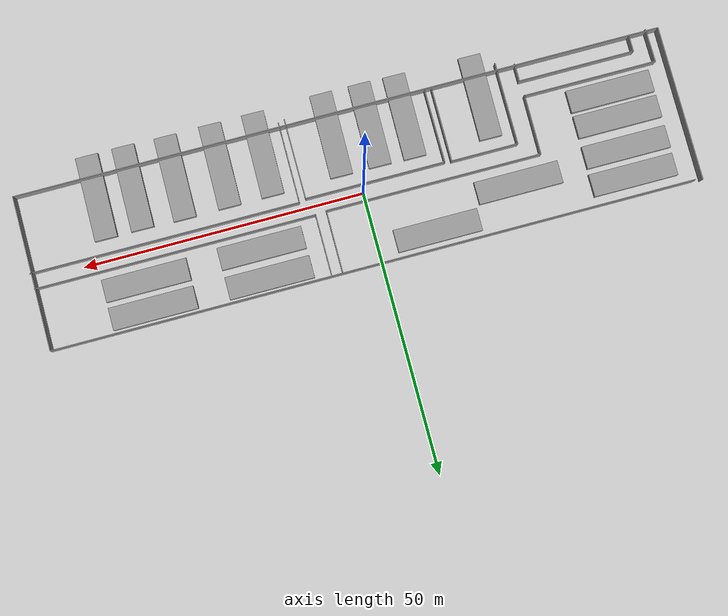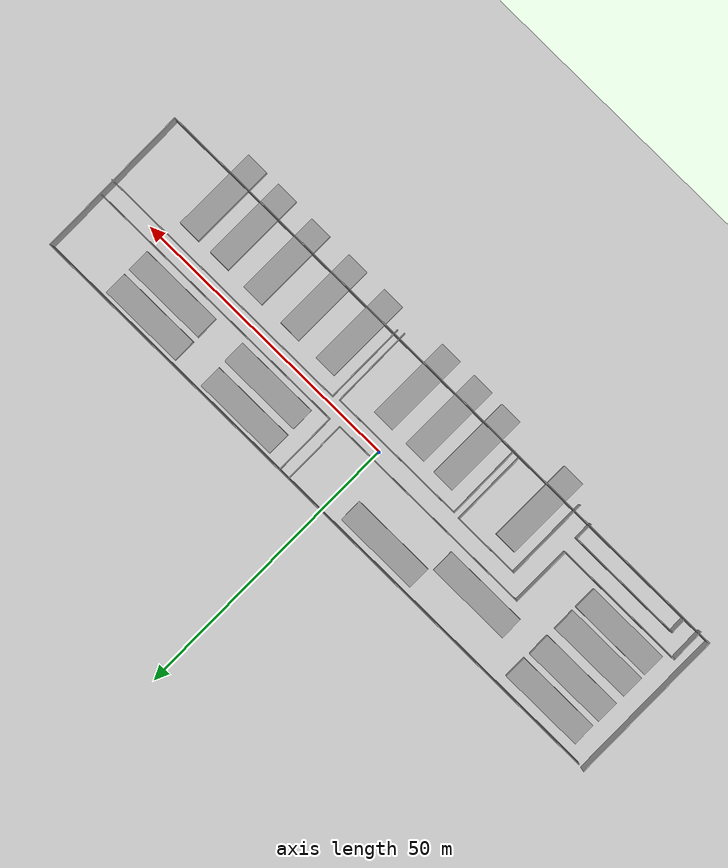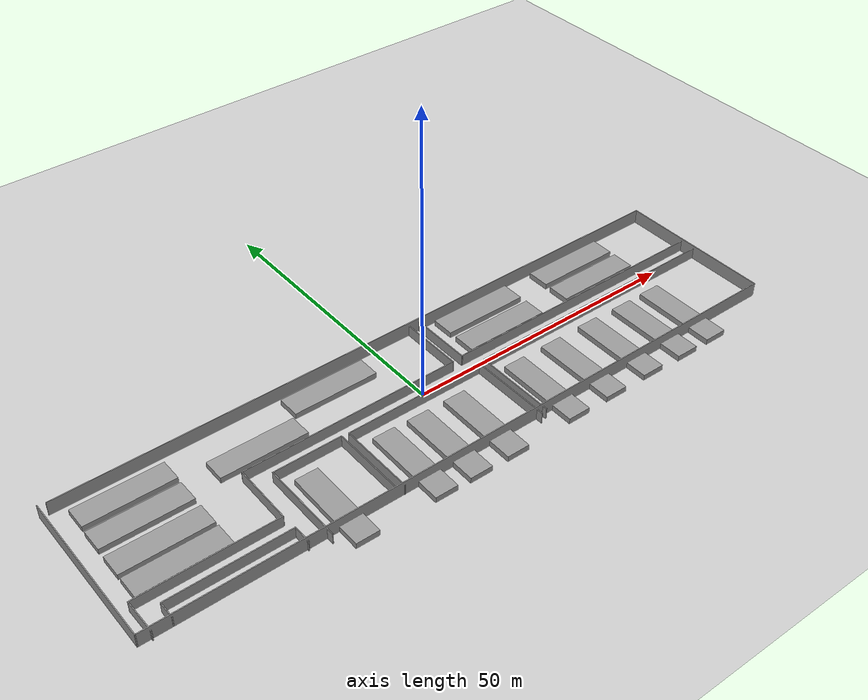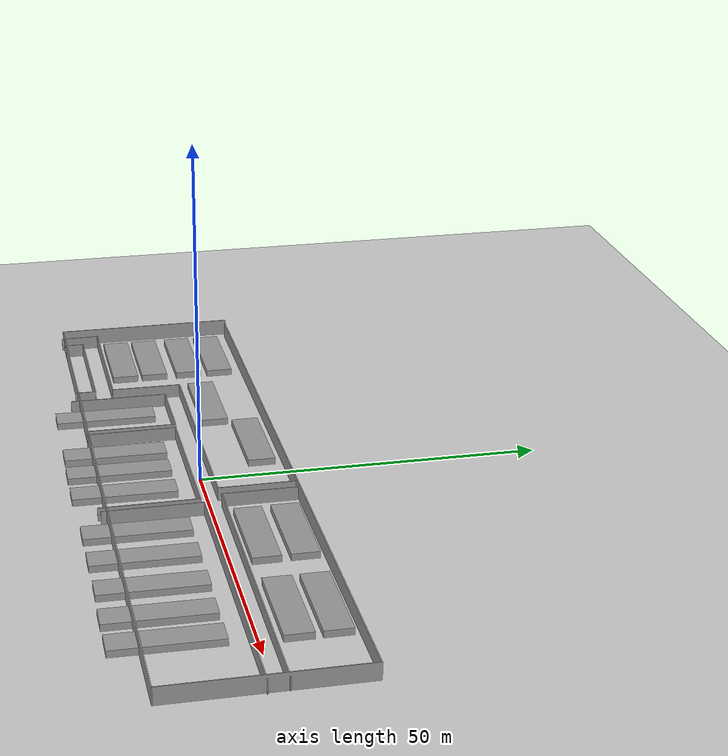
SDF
<sdf version="1.6">
 <world name="default">
  <light name="sun" type="directional">
   <pose>0 0 10 0 -0 0</pose>
   <diffuse>0.8 0.8 0.8 1</diffuse>
   <specular>0.2 0.2 0.2 1</specular>
   <attenuation>
    <range>1000</range>
    <constant>0.9</constant>
    <linear>0.01</linear>
    <quadratic>0.001</quadratic>
   </attenuation>
   <direction>-0.5 0.1 -0.9</direction>
  </light>
  <model name="ground_plane">
   <static>1</static>
   <link name="link">
    <collision name="collision">
     <geometry><plane><normal>0 0 1</normal><size>100 100</size></plane></geometry>
     <surface>
      <contact><collide_bitmask>65535</collide_bitmask></contact>
      <friction><ode><mu>100</mu><mu2>50</mu2></ode></friction>
     </surface>
    </collision>
    <visual name="visual">
     <cast_shadows>0</cast_shadows>
     <geometry><plane><normal>0 0 1</normal><size>100 100</size></plane></geometry>
     <material>
      <script><uri>file://media/materials/scripts/gazebo.material</uri><name>Gazebo/Grey</name></script>
     </material>
    </visual>
   </link>
  </model>
  <gravity>0 0 -9.8</gravity>
  <magnetic_field>6e-06 2.3e-05 -4.2e-05</magnetic_field>
  <atmosphere type="adiabatic"/>
  <physics name="default_physics" default="0" type="ode">
   <max_step_size>0.001</max_step_size>
   <real_time_factor>1</real_time_factor>
   <real_time_update_rate>1000</real_time_update_rate>
  </physics>
  <scene><ambient>0.4 0.4 0.4 1</ambient><background>0.7 0.7 0.7 1</background><shadows>1</shadows></scene>
  <audio><device>default</device></audio>
  <spherical_coordinates>
   <surface_model>EARTH_WGS84</surface_model>
   <latitude_deg>0</latitude_deg>
   <longitude_deg>0</longitude_deg>
   <elevation>0</elevation>
   <heading_deg>0</heading_deg>
  </spherical_coordinates>
  <model name="floorplan">
   <pose>0.935222 -1.4793 0 0 -0 0</pose>
   <link name="Wall_0">
    <collision name="Wall_0_Collision">
     <geometry><box><size>114.25 0.15 2.5</size></box></geometry>
     <pose>0 0 1.25 0 -0 0</pose>
    </collision>
    <visual name="Wall_0_Visual">
     <pose>0 0 1.25 0 -0 0</pose>
     <geometry><box><size>114.25 0.15 2.5</size></box></geometry>
     <material>
      <script><uri>file://media/materials/scripts/gazebo.material</uri><name>Gazebo/Grey</name></script>
      <ambient>1 1 1 1</ambient>
     </material>
     <meta><layer>0</layer></meta>
    </visual>
    <pose>0.461218 14.1797 0 0 -0 0</pose>
   </link>
   <link name="Wall_1">
    <collision name="Wall_1_Collision">
     <geometry><box><size>27.5 0.15 2.5</size></box></geometry>
     <pose>0 0 1.25 0 -0 0</pose>
    </collision>
    <visual name="Wall_1_Visual">
     <pose>0 0 1.25 0 -0 0</pose>
     <geometry><box><size>27.5 0.15 2.5</size></box></geometry>
     <material>
      <script><uri>file://media/materials/scripts/gazebo.material</uri><name>Gazebo/Grey</name></script>
      <ambient>1 1 1 1</ambient>
     </material>
     <meta><layer>0</layer></meta>
    </visual>
    <pose>57.5112 0.504686 0 0 -0 -1.5708</pose>
   </link>
   <link name="Wall_11">
    <collision name="Wall_11_Collision">
     <geometry><box><size>3 0.15 2</size></box></geometry>
     <pose>0 0 1 0 -0 0</pose>
    </collision>
    <visual name="Wall_11_Visual">
     <pose>0 0 1 0 -0 0</pose>
     <geometry><box><size>3 0.15 2</size></box></geometry>
     <material>
      <script><uri>file://media/materials/scripts/gazebo.material</uri><name>Gazebo/Grey</name></script>
      <ambient>1 1 1 1</ambient>
     </material>
     <meta><layer>0</layer></meta>
    </visual>
    <pose>-52.7012 -11.8017 0 0 -0 1.5708</pose>
   </link>
   <link name="Wall_12">
    <collision name="Wall_12_Collision">
     <geometry><box><size>20.75 0.15 2</size></box></geometry>
     <pose>0 0 1 0 -0 0</pose>
    </collision>
    <visual name="Wall_12_Visual">
     <pose>0 0 1 0 -0 0</pose>
     <geometry><box><size>20.75 0.15 2</size></box></geometry>
     <material>
      <script><uri>file://media/materials/scripts/gazebo.material</uri><name>Gazebo/Grey</name></script>
      <ambient>1 1 1 1</ambient>
     </material>
     <meta><layer>0</layer></meta>
    </visual>
    <pose>-42.4012 -10.3767 0 0 -0 0</pose>
   </link>
   <link name="Wall_13">
    <collision name="Wall_13_Collision">
     <geometry><box><size>3.25 0.15 2</size></box></geometry>
     <pose>0 0 1 0 -0 0</pose>
    </collision>
    <visual name="Wall_13_Visual">
     <pose>0 0 1 0 -0 0</pose>
     <geometry><box><size>3.25 0.15 2</size></box></geometry>
     <material>
      <script><uri>file://media/materials/scripts/gazebo.material</uri><name>Gazebo/Grey</name></script>
      <ambient>1 1 1 1</ambient>
     </material>
     <meta><layer>0</layer></meta>
    </visual>
    <pose>-32.1012 -11.9267 0 0 -0 -1.5708</pose>
   </link>
   <link name="Wall_15">
    <collision name="Wall_15_Collision">
     <geometry><box><size>14.75 0.15 2</size></box></geometry>
     <pose>0 0 1 0 -0 0</pose>
    </collision>
    <visual name="Wall_15_Visual">
     <pose>0 0 1 0 -0 0</pose>
     <geometry><box><size>14.75 0.15 2</size></box></geometry>
     <material>
      <script><uri>file://media/materials/scripts/gazebo.material</uri><name>Gazebo/Grey</name></script>
      <ambient>1 1 1 1</ambient>
     </material>
     <meta><layer>0</layer></meta>
    </visual>
    <pose>-28.8552 -7.12969 0 0 -0 1.5708</pose>
   </link>
   <link name="Wall_16">
    <collision name="Wall_16_Collision">
     <geometry><box><size>12 0.15 2</size></box></geometry>
     <pose>0 0 1 0 -0 0</pose>
    </collision>
    <visual name="Wall_16_Visual">
     <pose>0 0 1 0 -0 0</pose>
     <geometry><box><size>12 0.15 2</size></box></geometry>
     <material>
      <script><uri>file://media/materials/scripts/gazebo.material</uri><name>Gazebo/Grey</name></script>
      <ambient>1 1 1 1</ambient>
     </material>
     <meta><layer>0</layer></meta>
    </visual>
    <pose>-22.9302 0.170313 0 0 -0 0</pose>
   </link>
   <link name="Wall_17">
    <collision name="Wall_17_Collision">
     <geometry><box><size>13.25 0.15 2</size></box></geometry>
     <pose>0 0 1 0 -0 0</pose>
    </collision>
    <visual name="Wall_17_Visual">
     <pose>0 0 1 0 -0 0</pose>
     <geometry><box><size>13.25 0.15 2</size></box></geometry>
     <material>
      <script><uri>file://media/materials/scripts/gazebo.material</uri><name>Gazebo/Grey</name></script>
      <ambient>1 1 1 1</ambient>
     </material>
     <meta><layer>0</layer></meta>
    </visual>
    <pose>-17.0052 -6.37969 0 0 -0 -1.5708</pose>
   </link>
   <link name="Wall_19">
    <collision name="Wall_19_Collision">
     <geometry><box><size>13.4531 0.15 2</size></box></geometry>
     <pose>0 0 1 0 -0 0</pose>
    </collision>
    <visual name="Wall_19_Visual">
     <pose>0 0 1 0 -0 0</pose>
     <geometry><box><size>13.4531 0.15 2</size></box></geometry>
     <material>
      <script><uri>file://media/materials/scripts/gazebo.material</uri><name>Gazebo/Grey</name></script>
      <ambient>1 1 1 1</ambient>
     </material>
     <meta><layer>0</layer></meta>
    </visual>
    <pose>-15.7887 -6.64519 0 0 -0 1.57433</pose>
   </link>
   <link name="Wall_2">
    <collision name="Wall_2_Collision">
     <geometry><box><size>115.5 0.15 2.5</size></box></geometry>
     <pose>0 0 1.25 0 -0 0</pose>
    </collision>
    <visual name="Wall_2_Visual">
     <pose>0 0 1.25 0 -0 0</pose>
     <geometry><box><size>115.5 0.15 2.5</size></box></geometry>
     <material>
      <script><uri>file://media/materials/scripts/gazebo.material</uri><name>Gazebo/Grey</name></script>
      <ambient>1 1 1 1</ambient>
     </material>
     <meta><layer>0</layer></meta>
    </visual>
    <pose>-0.163782 -13.1703 0 0 -0 3.14159</pose>
   </link>
   <link name="Wall_20">
    <collision name="Wall_20_Collision">
     <geometry><box><size>24.9996 0.15 2</size></box></geometry>
     <pose>0 0 1 0 -0 0</pose>
    </collision>
    <visual name="Wall_20_Visual">
     <pose>0 0 1 0 -0 0</pose>
     <geometry><box><size>24.9996 0.15 2</size></box></geometry>
     <material>
      <script><uri>file://media/materials/scripts/gazebo.material</uri><name>Gazebo/Grey</name></script>
      <ambient>1 1 1 1</ambient>
     </material>
     <meta><layer>0</layer></meta>
    </visual>
    <pose>-3.38722 0.006313 0 0 -0 0</pose>
   </link>
   <link name="Wall_21">
    <collision name="Wall_21_Collision">
     <geometry><box><size>14.4535 0.15 2</size></box></geometry>
     <pose>0 0 1 0 -0 0</pose>
    </collision>
    <visual name="Wall_21_Visual">
     <pose>0 0 1 0 -0 0</pose>
     <geometry><box><size>14.4535 0.15 2</size></box></geometry>
     <material>
      <script><uri>file://media/materials/scripts/gazebo.material</uri><name>Gazebo/Grey</name></script>
      <ambient>1 1 1 1</ambient>
     </material>
     <meta><layer>0</layer></meta>
    </visual>
    <pose>9.06128 -7.14519 0 0 -0 -1.56751</pose>
   </link>
   <link name="Wall_23">
    <collision name="Wall_23_Collision">
     <geometry><box><size>14.5 0.15 2</size></box></geometry>
     <pose>0 0 1 0 -0 0</pose>
    </collision>
    <visual name="Wall_23_Visual">
     <pose>0 0 1 0 -0 0</pose>
     <geometry><box><size>14.5 0.15 2</size></box></geometry>
     <material>
      <script><uri>file://media/materials/scripts/gazebo.material</uri><name>Gazebo/Grey</name></script>
      <ambient>1 1 1 1</ambient>
     </material>
     <meta><layer>0</layer></meta>
    </visual>
    <pose>10.2388 -6.79169 0 0 -0 1.5708</pose>
   </link>
   <link name="Wall_24">
    <collision name="Wall_24_Collision">
     <geometry><box><size>47.75 0.15 2</size></box></geometry>
     <pose>0 0 1 0 -0 0</pose>
    </collision>
    <visual name="Wall_24_Visual">
     <pose>0 0 1 0 -0 0</pose>
     <geometry><box><size>47.75 0.15 2</size></box></geometry>
     <material>
      <script><uri>file://media/materials/scripts/gazebo.material</uri><name>Gazebo/Grey</name></script>
      <ambient>1 1 1 1</ambient>
     </material>
     <meta><layer>0</layer></meta>
    </visual>
    <pose>34.0388 0.383313 0 0 -0 0</pose>
   </link>
   <link name="Wall_26">
    <collision name="Wall_26_Collision">
     <geometry><box><size>11 0.15 2</size></box></geometry>
     <pose>0 0 1 0 -0 0</pose>
    </collision>
    <visual name="Wall_26_Visual">
     <pose>0 0 1 0 -0 0</pose>
     <geometry><box><size>11 0.15 2</size></box></geometry>
     <material>
      <script><uri>file://media/materials/scripts/gazebo.material</uri><name>Gazebo/Grey</name></script>
      <ambient>1 1 1 1</ambient>
     </material>
     <meta><layer>0</layer></meta>
    </visual>
    <pose>8.08678 8.58731 0 0 -0 -1.5708</pose>
   </link>
   <link name="Wall_27">
    <collision name="Wall_27_Collision">
     <geometry><box><size>49.75 0.15 2</size></box></geometry>
     <pose>0 0 1 0 -0 0</pose>
    </collision>
    <visual name="Wall_27_Visual">
     <pose>0 0 1 0 -0 0</pose>
     <geometry><box><size>49.75 0.15 2</size></box></geometry>
     <material>
      <script><uri>file://media/materials/scripts/gazebo.material</uri><name>Gazebo/Grey</name></script>
      <ambient>1 1 1 1</ambient>
     </material>
     <meta><layer>0</layer></meta>
    </visual>
    <pose>32.8868 3.16231 0 0 -0 0</pose>
   </link>
   <link name="Wall_3">
    <collision name="Wall_3_Collision">
     <geometry><box><size>27.75 0.15 2.5</size></box></geometry>
     <pose>0 0 1.25 0 -0 0</pose>
    </collision>
    <visual name="Wall_3_Visual">
     <pose>0 0 1.25 0 -0 0</pose>
     <geometry><box><size>27.75 0.15 2.5</size></box></geometry>
     <material>
      <script><uri>file://media/materials/scripts/gazebo.material</uri><name>Gazebo/Grey</name></script>
      <ambient>1 1 1 1</ambient>
     </material>
     <meta><layer>0</layer></meta>
    </visual>
    <pose>-57.8388 0.629686 0 0 -0 1.5708</pose>
   </link>
   <link name="Wall_5">
    <collision name="Wall_5_Collision">
     <geometry><box><size>6.0003 0.15 2</size></box></geometry>
     <pose>0 0 1 0 -0 0</pose>
    </collision>
    <visual name="Wall_5_Visual">
     <pose>0 0 1 0 -0 0</pose>
     <geometry><box><size>6.0003 0.15 2</size></box></geometry>
     <material>
      <script><uri>file://media/materials/scripts/gazebo.material</uri><name>Gazebo/Grey</name></script>
      <ambient>1 1 1 1</ambient>
     </material>
     <meta><layer>0</layer></meta>
    </visual>
    <pose>-55.8547 -10.5847 0 0 -0 1.58464</pose>
   </link>
   <link name="Wall_6">
    <collision name="Wall_6_Collision">
     <geometry><box><size>23.75 0.15 2</size></box></geometry>
     <pose>0 0 1 0 -0 0</pose>
    </collision>
    <visual name="Wall_6_Visual">
     <pose>0 0 1 0 -0 0</pose>
     <geometry><box><size>23.75 0.15 2</size></box></geometry>
     <material>
      <script><uri>file://media/materials/scripts/gazebo.material</uri><name>Gazebo/Grey</name></script>
      <ambient>1 1 1 1</ambient>
     </material>
     <meta><layer>0</layer></meta>
    </visual>
    <pose>-44.0952 -7.65969 0 0 -0 0</pose>
   </link>
   <link name="Wall_7">
    <collision name="Wall_7_Collision">
     <geometry><box><size>10.75 0.15 2</size></box></geometry>
     <pose>0 0 1 0 -0 0</pose>
    </collision>
    <visual name="Wall_7_Visual">
     <pose>0 0 1 0 -0 0</pose>
     <geometry><box><size>10.75 0.15 2</size></box></geometry>
     <material>
      <script><uri>file://media/materials/scripts/gazebo.material</uri><name>Gazebo/Grey</name></script>
      <ambient>1 1 1 1</ambient>
     </material>
     <meta><layer>0</layer></meta>
    </visual>
    <pose>-32.2547 -2.35969 0 0 -0 1.56316</pose>
   </link>
   <link name="Wall_8">
    <collision name="Wall_8_Collision">
     <geometry><box><size>38.5 0.15 2</size></box></geometry>
     <pose>0 0 1 0 -0 0</pose>
    </collision>
    <visual name="Wall_8_Visual">
     <pose>0 0 1 0 -0 0</pose>
     <geometry><box><size>38.5 0.15 2</size></box></geometry>
     <material>
      <script><uri>file://media/materials/scripts/gazebo.material</uri><name>Gazebo/Grey</name></script>
      <ambient>1 1 1 1</ambient>
     </material>
     <meta><layer>0</layer></meta>
    </visual>
    <pose>-13.0392 2.94031 0 0 -0 0</pose>
   </link>
   <link name="Wall_9">
    <collision name="Wall_9_Collision">
     <geometry><box><size>11.25 0.15 2</size></box></geometry>
     <pose>0 0 1 0 -0 0</pose>
    </collision>
    <visual name="Wall_9_Visual">
     <pose>0 0 1 0 -0 0</pose>
     <geometry><box><size>11.25 0.15 2</size></box></geometry>
     <material>
      <script><uri>file://media/materials/scripts/gazebo.material</uri><name>Gazebo/Grey</name></script>
      <ambient>1 1 1 1</ambient>
     </material>
     <meta><layer>0</layer></meta>
    </visual>
    <pose>6.13578 8.49031 0 0 -0 1.5708</pose>
   </link>
   <static>1</static>
  </model>
  <model name="factorybox">
   <link name="link_1">
    <inertial>
     <mass>1</mass>
     <inertia>
      <ixx>0.166667</ixx>
      <ixy>0</ixy>
      <ixz>0</ixz>
      <iyy>0.166667</iyy>
      <iyz>0</iyz>
      <izz>0.166667</izz>
     </inertia>
    </inertial>
    <pose>2e-06 0 0 0 -0 0</pose>
    <visual name="visual">
     <geometry><box><size>15 4 1</size></box></geometry>
     <material>
      <lighting>1</lighting>
      <script><uri>file://media/materials/scripts/gazebo.material</uri><name>Gazebo/Grey</name></script>
      <shader type="vertex"><normal_map>__default__</normal_map></shader>
      <ambient>0.3 0.3 0.3 1</ambient>
      <diffuse>0.7 0.7 0.7 1</diffuse>
      <specular>0.01 0.01 0.01 1</specular>
      <emissive>0 0 0 1</emissive>
     </material>
    </visual>
    <collision name="collision">
     <geometry><box><size>1 1 1</size></box></geometry>
     <surface>
      <friction>
       <ode><mu>1</mu><mu2>1</mu2><fdir1>0 0 0</fdir1><slip1>0</slip1><slip2>0</slip2></ode>
       <torsional>
        <coefficient>1</coefficient>
        <patch_radius>0</patch_radius>
        <surface_radius>0</surface_radius>
        <use_patch_radius>1</use_patch_radius>
        <ode><slip>0</slip></ode>
       </torsional>
      </friction>
      <bounce><restitution_coefficient>0</restitution_coefficient><threshold>1e+06</threshold></bounce>
      <contact>
       <collide_without_contact>0</collide_without_contact>
       <collide_without_contact_bitmask>1</collide_without_contact_bitmask>
       <collide_bitmask>1</collide_bitmask>
       <ode>
        <soft_cfm>0</soft_cfm>
        <soft_erp>0.2</soft_erp>
        <kp>1e+13</kp>
        <kd>1</kd>
        <max_vel>0.01</max_vel>
        <min_depth>0</min_depth>
       </ode>
       <bullet>
        <split_impulse>1</split_impulse>
        <split_impulse_penetration_threshold>-0.01</split_impulse_penetration_threshold>
        <soft_cfm>0</soft_cfm>
        <soft_erp>0.2</soft_erp>
        <kp>1e+13</kp>
        <kd>1</kd>
       </bullet>
      </contact>
     </surface>
    </collision>
   </link>
   <static>0</static>
   <pose>-45.9781 8.98485 0.5 0 -0 0</pose>
  </model>
  <model name="factorybox_clone">
   <link name="link_1">
    <inertial>
     <mass>1</mass>
     <inertia>
      <ixx>0.166667</ixx>
      <ixy>0</ixy>
      <ixz>0</ixz>
      <iyy>0.166667</iyy>
      <iyz>0</iyz>
      <izz>0.166667</izz>
     </inertia>
    </inertial>
    <pose>2e-06 0 0 0 -0 0</pose>
    <visual name="visual">
     <geometry><box><size>15 4 1</size></box></geometry>
     <material>
      <lighting>1</lighting>
      <script><uri>file://media/materials/scripts/gazebo.material</uri><name>Gazebo/Grey</name></script>
      <shader type="vertex"><normal_map>__default__</normal_map></shader>
      <ambient>0.3 0.3 0.3 1</ambient>
      <diffuse>0.7 0.7 0.7 1</diffuse>
      <specular>0.01 0.01 0.01 1</specular>
      <emissive>0 0 0 1</emissive>
     </material>
    </visual>
    <collision name="collision">
     <geometry><box><size>1 1 1</size></box></geometry>
     <surface>
      <friction>
       <ode><mu>1</mu><mu2>1</mu2><fdir1>0 0 0</fdir1><slip1>0</slip1><slip2>0</slip2></ode>
       <torsional>
        <coefficient>1</coefficient>
        <patch_radius>0</patch_radius>
        <surface_radius>0</surface_radius>
        <use_patch_radius>1</use_patch_radius>
        <ode><slip>0</slip></ode>
       </torsional>
      </friction>
      <bounce><restitution_coefficient>0</restitution_coefficient><threshold>1e+06</threshold></bounce>
      <contact>
       <collide_without_contact>0</collide_without_contact>
       <collide_without_contact_bitmask>1</collide_without_contact_bitmask>
       <collide_bitmask>1</collide_bitmask>
       <ode>
        <soft_cfm>0</soft_cfm>
        <soft_erp>0.2</soft_erp>
        <kp>1e+13</kp>
        <kd>1</kd>
        <max_vel>0.01</max_vel>
        <min_depth>0</min_depth>
       </ode>
       <bullet>
        <split_impulse>1</split_impulse>
        <split_impulse_penetration_threshold>-0.01</split_impulse_penetration_threshold>
        <soft_cfm>0</soft_cfm>
        <soft_erp>0.2</soft_erp>
        <kp>1e+13</kp>
        <kd>1</kd>
       </bullet>
      </contact>
     </surface>
    </collision>
   </link>
   <static>0</static>
   <pose>-46.1159 3.96263 0.499995 0 -1e-05 0</pose>
  </model>
  <model name="factorybox_clone_0">
   <link name="link_1">
    <inertial>
     <mass>1</mass>
     <inertia>
      <ixx>0.166667</ixx>
      <ixy>0</ixy>
      <ixz>0</ixz>
      <iyy>0.166667</iyy>
      <iyz>0</iyz>
      <izz>0.166667</izz>
     </inertia>
    </inertial>
    <pose>2e-06 0 0 0 -0 0</pose>
    <visual name="visual">
     <geometry><box><size>15 4 1</size></box></geometry>
     <material>
      <lighting>1</lighting>
      <script><uri>file://media/materials/scripts/gazebo.material</uri><name>Gazebo/Grey</name></script>
      <shader type="vertex"><normal_map>__default__</normal_map></shader>
      <ambient>0.3 0.3 0.3 1</ambient>
      <diffuse>0.7 0.7 0.7 1</diffuse>
      <specular>0.01 0.01 0.01 1</specular>
      <emissive>0 0 0 1</emissive>
     </material>
    </visual>
    <collision name="collision">
     <geometry><box><size>1 1 1</size></box></geometry>
     <surface>
      <friction>
       <ode><mu>1</mu><mu2>1</mu2><fdir1>0 0 0</fdir1><slip1>0</slip1><slip2>0</slip2></ode>
       <torsional>
        <coefficient>1</coefficient>
        <patch_radius>0</patch_radius>
        <surface_radius>0</surface_radius>
        <use_patch_radius>1</use_patch_radius>
        <ode><slip>0</slip></ode>
       </torsional>
      </friction>
      <bounce><restitution_coefficient>0</restitution_coefficient><threshold>1e+06</threshold></bounce>
      <contact>
       <collide_without_contact>0</collide_without_contact>
       <collide_without_contact_bitmask>1</collide_without_contact_bitmask>
       <collide_bitmask>1</collide_bitmask>
       <ode>
        <soft_cfm>0</soft_cfm>
        <soft_erp>0.2</soft_erp>
        <kp>1e+13</kp>
        <kd>1</kd>
        <max_vel>0.01</max_vel>
        <min_depth>0</min_depth>
       </ode>
       <bullet>
        <split_impulse>1</split_impulse>
        <split_impulse_penetration_threshold>-0.01</split_impulse_penetration_threshold>
        <soft_cfm>0</soft_cfm>
        <soft_erp>0.2</soft_erp>
        <kp>1e+13</kp>
        <kd>1</kd>
       </bullet>
      </contact>
     </surface>
    </collision>
   </link>
   <static>0</static>
   <pose>-46.1738 -1.5629 0.499995 0 -1e-05 0</pose>
  </model>
  <model name="factorybox_clone_1">
   <link name="link_1">
    <inertial>
     <mass>1</mass>
     <inertia>
      <ixx>0.166667</ixx>
      <ixy>0</ixy>
      <ixz>0</ixz>
      <iyy>0.166667</iyy>
      <iyz>0</iyz>
      <izz>0.166667</izz>
     </inertia>
    </inertial>
    <pose>2e-06 0 0 0 -0 0</pose>
    <visual name="visual">
     <geometry><box><size>15 4 1</size></box></geometry>
     <material>
      <lighting>1</lighting>
      <script><uri>file://media/materials/scripts/gazebo.material</uri><name>Gazebo/Grey</name></script>
      <shader type="vertex"><normal_map>__default__</normal_map></shader>
      <ambient>0.3 0.3 0.3 1</ambient>
      <diffuse>0.7 0.7 0.7 1</diffuse>
      <specular>0.01 0.01 0.01 1</specular>
      <emissive>0 0 0 1</emissive>
     </material>
    </visual>
    <collision name="collision">
     <geometry><box><size>1 1 1</size></box></geometry>
     <surface>
      <friction>
       <ode><mu>1</mu><mu2>1</mu2><fdir1>0 0 0</fdir1><slip1>0</slip1><slip2>0</slip2></ode>
       <torsional>
        <coefficient>1</coefficient>
        <patch_radius>0</patch_radius>
        <surface_radius>0</surface_radius>
        <use_patch_radius>1</use_patch_radius>
        <ode><slip>0</slip></ode>
       </torsional>
      </friction>
      <bounce><restitution_coefficient>0</restitution_coefficient><threshold>1e+06</threshold></bounce>
      <contact>
       <collide_without_contact>0</collide_without_contact>
       <collide_without_contact_bitmask>1</collide_without_contact_bitmask>
       <collide_bitmask>1</collide_bitmask>
       <ode>
        <soft_cfm>0</soft_cfm>
        <soft_erp>0.2</soft_erp>
        <kp>1e+13</kp>
        <kd>1</kd>
        <max_vel>0.01</max_vel>
        <min_depth>0</min_depth>
       </ode>
       <bullet>
        <split_impulse>1</split_impulse>
        <split_impulse_penetration_threshold>-0.01</split_impulse_penetration_threshold>
        <soft_cfm>0</soft_cfm>
        <soft_erp>0.2</soft_erp>
        <kp>1e+13</kp>
        <kd>1</kd>
       </bullet>
      </contact>
     </surface>
    </collision>
   </link>
   <static>0</static>
   <pose>-46.1591 -6.23166 0.499995 0 1e-05 0</pose>
  </model>
  <model name="factorybox_clone_2">
   <link name="link_1">
    <inertial>
     <mass>1</mass>
     <inertia>
      <ixx>0.166667</ixx>
      <ixy>0</ixy>
      <ixz>0</ixz>
      <iyy>0.166667</iyy>
      <iyz>0</iyz>
      <izz>0.166667</izz>
     </inertia>
    </inertial>
    <pose>2e-06 0 0 0 -0 0</pose>
    <visual name="visual">
     <geometry><box><size>15 4 1</size></box></geometry>
     <material>
      <lighting>1</lighting>
      <script><uri>file://media/materials/scripts/gazebo.material</uri><name>Gazebo/Grey</name></script>
      <shader type="vertex"><normal_map>__default__</normal_map></shader>
      <ambient>0.3 0.3 0.3 1</ambient>
      <diffuse>0.7 0.7 0.7 1</diffuse>
      <specular>0.01 0.01 0.01 1</specular>
      <emissive>0 0 0 1</emissive>
     </material>
    </visual>
    <collision name="collision">
     <geometry><box><size>1 1 1</size></box></geometry>
     <surface>
      <friction>
       <ode><mu>1</mu><mu2>1</mu2><fdir1>0 0 0</fdir1><slip1>0</slip1><slip2>0</slip2></ode>
       <torsional>
        <coefficient>1</coefficient>
        <patch_radius>0</patch_radius>
        <surface_radius>0</surface_radius>
        <use_patch_radius>1</use_patch_radius>
        <ode><slip>0</slip></ode>
       </torsional>
      </friction>
      <bounce><restitution_coefficient>0</restitution_coefficient><threshold>1e+06</threshold></bounce>
      <contact>
       <collide_without_contact>0</collide_without_contact>
       <collide_without_contact_bitmask>1</collide_without_contact_bitmask>
       <collide_bitmask>1</collide_bitmask>
       <ode>
        <soft_cfm>0</soft_cfm>
        <soft_erp>0.2</soft_erp>
        <kp>1e+13</kp>
        <kd>1</kd>
        <max_vel>0.01</max_vel>
        <min_depth>0</min_depth>
       </ode>
       <bullet>
        <split_impulse>1</split_impulse>
        <split_impulse_penetration_threshold>-0.01</split_impulse_penetration_threshold>
        <soft_cfm>0</soft_cfm>
        <soft_erp>0.2</soft_erp>
        <kp>1e+13</kp>
        <kd>1</kd>
       </bullet>
      </contact>
     </surface>
    </collision>
   </link>
   <static>0</static>
   <pose>-10.6921 9.59296 0.499995 -1e-05 -0 -0</pose>
  </model>
  <model name="factorybox_clone_3">
   <link name="link_1">
    <inertial>
     <mass>1</mass>
     <inertia>
      <ixx>0.166667</ixx>
      <ixy>0</ixy>
      <ixz>0</ixz>
      <iyy>0.166667</iyy>
      <iyz>0</iyz>
      <izz>0.166667</izz>
     </inertia>
    </inertial>
    <pose>2e-06 0 0 0 -0 0</pose>
    <visual name="visual">
     <geometry><box><size>15 4 1</size></box></geometry>
     <material>
      <lighting>1</lighting>
      <script><uri>file://media/materials/scripts/gazebo.material</uri><name>Gazebo/Grey</name></script>
      <shader type="vertex"><normal_map>__default__</normal_map></shader>
      <ambient>0.3 0.3 0.3 1</ambient>
      <diffuse>0.7 0.7 0.7 1</diffuse>
      <specular>0.01 0.01 0.01 1</specular>
      <emissive>0 0 0 1</emissive>
     </material>
    </visual>
    <collision name="collision">
     <geometry><box><size>1 1 1</size></box></geometry>
     <surface>
      <friction>
       <ode><mu>1</mu><mu2>1</mu2><fdir1>0 0 0</fdir1><slip1>0</slip1><slip2>0</slip2></ode>
       <torsional>
        <coefficient>1</coefficient>
        <patch_radius>0</patch_radius>
        <surface_radius>0</surface_radius>
        <use_patch_radius>1</use_patch_radius>
        <ode><slip>0</slip></ode>
       </torsional>
      </friction>
      <bounce><restitution_coefficient>0</restitution_coefficient><threshold>1e+06</threshold></bounce>
      <contact>
       <collide_without_contact>0</collide_without_contact>
       <collide_without_contact_bitmask>1</collide_without_contact_bitmask>
       <collide_bitmask>1</collide_bitmask>
       <ode>
        <soft_cfm>0</soft_cfm>
        <soft_erp>0.2</soft_erp>
        <kp>1e+13</kp>
        <kd>1</kd>
        <max_vel>0.01</max_vel>
        <min_depth>0</min_depth>
       </ode>
       <bullet>
        <split_impulse>1</split_impulse>
        <split_impulse_penetration_threshold>-0.01</split_impulse_penetration_threshold>
        <soft_cfm>0</soft_cfm>
        <soft_erp>0.2</soft_erp>
        <kp>1e+13</kp>
        <kd>1</kd>
       </bullet>
      </contact>
     </surface>
    </collision>
   </link>
   <static>0</static>
   <pose>-26.389 5.14583 0.499995 0 1e-05 0</pose>
  </model>
  <model name="factorybox_clone_4">
   <link name="link_1">
    <inertial>
     <mass>1</mass>
     <inertia>
      <ixx>0.166667</ixx>
      <ixy>0</ixy>
      <ixz>0</ixz>
      <iyy>0.166667</iyy>
      <iyz>0</iyz>
      <izz>0.166667</izz>
     </inertia>
    </inertial>
    <pose>2e-06 0 0 0 -0 0</pose>
    <visual name="visual">
     <geometry><box><size>15 4 1</size></box></geometry>
     <material>
      <lighting>1</lighting>
      <script><uri>file://media/materials/scripts/gazebo.material</uri><name>Gazebo/Grey</name></script>
      <shader type="vertex"><normal_map>__default__</normal_map></shader>
      <ambient>0.3 0.3 0.3 1</ambient>
      <diffuse>0.7 0.7 0.7 1</diffuse>
      <specular>0.01 0.01 0.01 1</specular>
      <emissive>0 0 0 1</emissive>
     </material>
    </visual>
    <collision name="collision">
     <geometry><box><size>1 1 1</size></box></geometry>
     <surface>
      <friction>
       <ode><mu>1</mu><mu2>1</mu2><fdir1>0 0 0</fdir1><slip1>0</slip1><slip2>0</slip2></ode>
       <torsional>
        <coefficient>1</coefficient>
        <patch_radius>0</patch_radius>
        <surface_radius>0</surface_radius>
        <use_patch_radius>1</use_patch_radius>
        <ode><slip>0</slip></ode>
       </torsional>
      </friction>
      <bounce><restitution_coefficient>0</restitution_coefficient><threshold>1e+06</threshold></bounce>
      <contact>
       <collide_without_contact>0</collide_without_contact>
       <collide_without_contact_bitmask>1</collide_without_contact_bitmask>
       <collide_bitmask>1</collide_bitmask>
       <ode>
        <soft_cfm>0</soft_cfm>
        <soft_erp>0.2</soft_erp>
        <kp>1e+13</kp>
        <kd>1</kd>
        <max_vel>0.01</max_vel>
        <min_depth>0</min_depth>
       </ode>
       <bullet>
        <split_impulse>1</split_impulse>
        <split_impulse_penetration_threshold>-0.01</split_impulse_penetration_threshold>
        <soft_cfm>0</soft_cfm>
        <soft_erp>0.2</soft_erp>
        <kp>1e+13</kp>
        <kd>1</kd>
       </bullet>
      </contact>
     </surface>
    </collision>
   </link>
   <static>0</static>
   <pose>19.3984 10.0307 0.499995 -1e-05 -0 -0</pose>
  </model>
  <model name="factorybox_clone_5">
   <link name="link_1">
    <inertial>
     <mass>1</mass>
     <inertia>
      <ixx>0.166667</ixx>
      <ixy>0</ixy>
      <ixz>0</ixz>
      <iyy>0.166667</iyy>
      <iyz>0</iyz>
      <izz>0.166667</izz>
     </inertia>
    </inertial>
    <pose>2e-06 0 0 0 -0 0</pose>
    <visual name="visual">
     <geometry><box><size>15 4 1</size></box></geometry>
     <material>
      <lighting>1</lighting>
      <script><uri>file://media/materials/scripts/gazebo.material</uri><name>Gazebo/Grey</name></script>
      <shader type="vertex"><normal_map>__default__</normal_map></shader>
      <ambient>0.3 0.3 0.3 1</ambient>
      <diffuse>0.7 0.7 0.7 1</diffuse>
      <specular>0.01 0.01 0.01 1</specular>
      <emissive>0 0 0 1</emissive>
     </material>
    </visual>
    <collision name="collision">
     <geometry><box><size>1 1 1</size></box></geometry>
     <surface>
      <friction>
       <ode><mu>1</mu><mu2>1</mu2><fdir1>0 0 0</fdir1><slip1>0</slip1><slip2>0</slip2></ode>
       <torsional>
        <coefficient>1</coefficient>
        <patch_radius>0</patch_radius>
        <surface_radius>0</surface_radius>
        <use_patch_radius>1</use_patch_radius>
        <ode><slip>0</slip></ode>
       </torsional>
      </friction>
      <bounce><restitution_coefficient>0</restitution_coefficient><threshold>1e+06</threshold></bounce>
      <contact>
       <collide_without_contact>0</collide_without_contact>
       <collide_without_contact_bitmask>1</collide_without_contact_bitmask>
       <collide_bitmask>1</collide_bitmask>
       <ode>
        <soft_cfm>0</soft_cfm>
        <soft_erp>0.2</soft_erp>
        <kp>1e+13</kp>
        <kd>1</kd>
        <max_vel>0.01</max_vel>
        <min_depth>0</min_depth>
       </ode>
       <bullet>
        <split_impulse>1</split_impulse>
        <split_impulse_penetration_threshold>-0.01</split_impulse_penetration_threshold>
        <soft_cfm>0</soft_cfm>
        <soft_erp>0.2</soft_erp>
        <kp>1e+13</kp>
        <kd>1</kd>
       </bullet>
      </contact>
     </surface>
    </collision>
   </link>
   <static>0</static>
   <pose>19.458 4.76185 0.499995 0 1e-05 0</pose>
  </model>
  <model name="factorybox_clone_6">
   <link name="link_1">
    <inertial>
     <mass>1</mass>
     <inertia>
      <ixx>0.166667</ixx>
      <ixy>0</ixy>
      <ixz>0</ixz>
      <iyy>0.166667</iyy>
      <iyz>0</iyz>
      <izz>0.166667</izz>
     </inertia>
    </inertial>
    <pose>2e-06 0 0 0 -0 0</pose>
    <visual name="visual">
     <geometry><box><size>15 4 1</size></box></geometry>
     <material>
      <lighting>1</lighting>
      <script><uri>file://media/materials/scripts/gazebo.material</uri><name>Gazebo/Grey</name></script>
      <shader type="vertex"><normal_map>__default__</normal_map></shader>
      <ambient>0.3 0.3 0.3 1</ambient>
      <diffuse>0.7 0.7 0.7 1</diffuse>
      <specular>0.01 0.01 0.01 1</specular>
      <emissive>0 0 0 1</emissive>
     </material>
    </visual>
    <collision name="collision">
     <geometry><box><size>1 1 1</size></box></geometry>
     <surface>
      <friction>
       <ode><mu>1</mu><mu2>1</mu2><fdir1>0 0 0</fdir1><slip1>0</slip1><slip2>0</slip2></ode>
       <torsional>
        <coefficient>1</coefficient>
        <patch_radius>0</patch_radius>
        <surface_radius>0</surface_radius>
        <use_patch_radius>1</use_patch_radius>
        <ode><slip>0</slip></ode>
       </torsional>
      </friction>
      <bounce><restitution_coefficient>0</restitution_coefficient><threshold>1e+06</threshold></bounce>
      <contact>
       <collide_without_contact>0</collide_without_contact>
       <collide_without_contact_bitmask>1</collide_without_contact_bitmask>
       <collide_bitmask>1</collide_bitmask>
       <ode>
        <soft_cfm>0</soft_cfm>
        <soft_erp>0.2</soft_erp>
        <kp>1e+13</kp>
        <kd>1</kd>
        <max_vel>0.01</max_vel>
        <min_depth>0</min_depth>
       </ode>
       <bullet>
        <split_impulse>1</split_impulse>
        <split_impulse_penetration_threshold>-0.01</split_impulse_penetration_threshold>
        <soft_cfm>0</soft_cfm>
        <soft_erp>0.2</soft_erp>
        <kp>1e+13</kp>
        <kd>1</kd>
       </bullet>
      </contact>
     </surface>
    </collision>
   </link>
   <static>0</static>
   <pose>40 10 0.499995 -1e-05 -0 -0</pose>
  </model>
  <model name="factorybox_clone_7">
   <link name="link_1">
    <inertial>
     <mass>1</mass>
     <inertia>
      <ixx>0.166667</ixx>
      <ixy>0</ixy>
      <ixz>0</ixz>
      <iyy>0.166667</iyy>
      <iyz>0</iyz>
      <izz>0.166667</izz>
     </inertia>
    </inertial>
    <pose>2e-06 0 0 0 -0 0</pose>
    <visual name="visual">
     <geometry><box><size>15 4 1</size></box></geometry>
     <material>
      <lighting>1</lighting>
      <script><uri>file://media/materials/scripts/gazebo.material</uri><name>Gazebo/Grey</name></script>
      <shader type="vertex"><normal_map>__default__</normal_map></shader>
      <ambient>0.3 0.3 0.3 1</ambient>
      <diffuse>0.7 0.7 0.7 1</diffuse>
      <specular>0.01 0.01 0.01 1</specular>
      <emissive>0 0 0 1</emissive>
     </material>
    </visual>
    <collision name="collision">
     <geometry><box><size>1 1 1</size></box></geometry>
     <surface>
      <friction>
       <ode><mu>1</mu><mu2>1</mu2><fdir1>0 0 0</fdir1><slip1>0</slip1><slip2>0</slip2></ode>
       <torsional>
        <coefficient>1</coefficient>
        <patch_radius>0</patch_radius>
        <surface_radius>0</surface_radius>
        <use_patch_radius>1</use_patch_radius>
        <ode><slip>0</slip></ode>
       </torsional>
      </friction>
      <bounce><restitution_coefficient>0</restitution_coefficient><threshold>1e+06</threshold></bounce>
      <contact>
       <collide_without_contact>0</collide_without_contact>
       <collide_without_contact_bitmask>1</collide_without_contact_bitmask>
       <collide_bitmask>1</collide_bitmask>
       <ode>
        <soft_cfm>0</soft_cfm>
        <soft_erp>0.2</soft_erp>
        <kp>1e+13</kp>
        <kd>1</kd>
        <max_vel>0.01</max_vel>
        <min_depth>0</min_depth>
       </ode>
       <bullet>
        <split_impulse>1</split_impulse>
        <split_impulse_penetration_threshold>-0.01</split_impulse_penetration_threshold>
        <soft_cfm>0</soft_cfm>
        <soft_erp>0.2</soft_erp>
        <kp>1e+13</kp>
        <kd>1</kd>
       </bullet>
      </contact>
     </surface>
    </collision>
   </link>
   <static>0</static>
   <pose>40 5 0.499995 0 1e-05 0</pose>
  </model>
  <model name="factorybox_clone_8">
   <link name="link_1">
    <inertial>
     <mass>1</mass>
     <inertia>
      <ixx>0.166667</ixx>
      <ixy>0</ixy>
      <ixz>0</ixz>
      <iyy>0.166667</iyy>
      <iyz>0</iyz>
      <izz>0.166667</izz>
     </inertia>
    </inertial>
    <pose>2e-06 0 0 0 -0 0</pose>
    <visual name="visual">
     <geometry><box><size>15 4 1</size></box></geometry>
     <material>
      <lighting>1</lighting>
      <script><uri>file://media/materials/scripts/gazebo.material</uri><name>Gazebo/Grey</name></script>
      <shader type="vertex"><normal_map>__default__</normal_map></shader>
      <ambient>0.3 0.3 0.3 1</ambient>
      <diffuse>0.7 0.7 0.7 1</diffuse>
      <specular>0.01 0.01 0.01 1</specular>
      <emissive>0 0 0 1</emissive>
     </material>
    </visual>
    <collision name="collision">
     <geometry><box><size>1 1 1</size></box></geometry>
     <surface>
      <friction>
       <ode><mu>1</mu><mu2>1</mu2><fdir1>0 0 0</fdir1><slip1>0</slip1><slip2>0</slip2></ode>
       <torsional>
        <coefficient>1</coefficient>
        <patch_radius>0</patch_radius>
        <surface_radius>0</surface_radius>
        <use_patch_radius>1</use_patch_radius>
        <ode><slip>0</slip></ode>
       </torsional>
      </friction>
      <bounce><restitution_coefficient>0</restitution_coefficient><threshold>1e+06</threshold></bounce>
      <contact>
       <collide_without_contact>0</collide_without_contact>
       <collide_without_contact_bitmask>1</collide_without_contact_bitmask>
       <collide_bitmask>1</collide_bitmask>
       <ode>
        <soft_cfm>0</soft_cfm>
        <soft_erp>0.2</soft_erp>
        <kp>1e+13</kp>
        <kd>1</kd>
        <max_vel>0.01</max_vel>
        <min_depth>0</min_depth>
       </ode>
       <bullet>
        <split_impulse>1</split_impulse>
        <split_impulse_penetration_threshold>-0.01</split_impulse_penetration_threshold>
        <soft_cfm>0</soft_cfm>
        <soft_erp>0.2</soft_erp>
        <kp>1e+13</kp>
        <kd>1</kd>
       </bullet>
      </contact>
     </surface>
    </collision>
   </link>
   <static>0</static>
   <pose>-23.9659 -11.1335 0.499995 0 -1e-05 1.56194</pose>
  </model>
  <model name="factorybox_clone_8_clone">
   <link name="link_1">
    <inertial>
     <mass>1</mass>
     <inertia>
      <ixx>0.166667</ixx>
      <ixy>0</ixy>
      <ixz>0</ixz>
      <iyy>0.166667</iyy>
      <iyz>0</iyz>
      <izz>0.166667</izz>
     </inertia>
    </inertial>
    <pose>2e-06 0 0 0 -0 0</pose>
    <visual name="visual">
     <geometry><box><size>15 4 1</size></box></geometry>
     <material>
      <lighting>1</lighting>
      <script><uri>file://media/materials/scripts/gazebo.material</uri><name>Gazebo/Grey</name></script>
      <shader type="vertex"><normal_map>__default__</normal_map></shader>
      <ambient>0.3 0.3 0.3 1</ambient>
      <diffuse>0.7 0.7 0.7 1</diffuse>
      <specular>0.01 0.01 0.01 1</specular>
      <emissive>0 0 0 1</emissive>
     </material>
    </visual>
    <collision name="collision">
     <geometry><box><size>1 1 1</size></box></geometry>
     <surface>
      <friction>
       <ode><mu>1</mu><mu2>1</mu2><fdir1>0 0 0</fdir1><slip1>0</slip1><slip2>0</slip2></ode>
       <torsional>
        <coefficient>1</coefficient>
        <patch_radius>0</patch_radius>
        <surface_radius>0</surface_radius>
        <use_patch_radius>1</use_patch_radius>
        <ode><slip>0</slip></ode>
       </torsional>
      </friction>
      <bounce><restitution_coefficient>0</restitution_coefficient><threshold>1e+06</threshold></bounce>
      <contact>
       <collide_without_contact>0</collide_without_contact>
       <collide_without_contact_bitmask>1</collide_without_contact_bitmask>
       <collide_bitmask>1</collide_bitmask>
       <ode>
        <soft_cfm>0</soft_cfm>
        <soft_erp>0.2</soft_erp>
        <kp>1e+13</kp>
        <kd>1</kd>
        <max_vel>0.01</max_vel>
        <min_depth>0</min_depth>
       </ode>
       <bullet>
        <split_impulse>1</split_impulse>
        <split_impulse_penetration_threshold>-0.01</split_impulse_penetration_threshold>
        <soft_cfm>0</soft_cfm>
        <soft_erp>0.2</soft_erp>
        <kp>1e+13</kp>
        <kd>1</kd>
       </bullet>
      </contact>
     </surface>
    </collision>
   </link>
   <static>0</static>
   <pose>-10.3305 -11.2047 0.499995 0 1e-05 1.56194</pose>
  </model>
  <model name="factorybox_clone_8_clone_0">
   <link name="link_1">
    <inertial>
     <mass>1</mass>
     <inertia>
      <ixx>0.166667</ixx>
      <ixy>0</ixy>
      <ixz>0</ixz>
      <iyy>0.166667</iyy>
      <iyz>0</iyz>
      <izz>0.166667</izz>
     </inertia>
    </inertial>
    <pose>2e-06 0 0 0 -0 0</pose>
    <visual name="visual">
     <geometry><box><size>15 4 1</size></box></geometry>
     <material>
      <lighting>1</lighting>
      <script><uri>file://media/materials/scripts/gazebo.material</uri><name>Gazebo/Grey</name></script>
      <shader type="vertex"><normal_map>__default__</normal_map></shader>
      <ambient>0.3 0.3 0.3 1</ambient>
      <diffuse>0.7 0.7 0.7 1</diffuse>
      <specular>0.01 0.01 0.01 1</specular>
      <emissive>0 0 0 1</emissive>
     </material>
    </visual>
    <collision name="collision">
     <geometry><box><size>1 1 1</size></box></geometry>
     <surface>
      <friction>
       <ode><mu>1</mu><mu2>1</mu2><fdir1>0 0 0</fdir1><slip1>0</slip1><slip2>0</slip2></ode>
       <torsional>
        <coefficient>1</coefficient>
        <patch_radius>0</patch_radius>
        <surface_radius>0</surface_radius>
        <use_patch_radius>1</use_patch_radius>
        <ode><slip>0</slip></ode>
       </torsional>
      </friction>
      <bounce><restitution_coefficient>0</restitution_coefficient><threshold>1e+06</threshold></bounce>
      <contact>
       <collide_without_contact>0</collide_without_contact>
       <collide_without_contact_bitmask>1</collide_without_contact_bitmask>
       <collide_bitmask>1</collide_bitmask>
       <ode>
        <soft_cfm>0</soft_cfm>
        <soft_erp>0.2</soft_erp>
        <kp>1e+13</kp>
        <kd>1</kd>
        <max_vel>0.01</max_vel>
        <min_depth>0</min_depth>
       </ode>
       <bullet>
        <split_impulse>1</split_impulse>
        <split_impulse_penetration_threshold>-0.01</split_impulse_penetration_threshold>
        <soft_cfm>0</soft_cfm>
        <soft_erp>0.2</soft_erp>
        <kp>1e+13</kp>
        <kd>1</kd>
       </bullet>
      </contact>
     </surface>
    </collision>
   </link>
   <static>0</static>
   <pose>-4.09924 -11.339 0.499995 1e-05 -0 1.56194</pose>
  </model>
  <model name="factorybox_clone_8_clone_1">
   <link name="link_1">
    <inertial>
     <mass>1</mass>
     <inertia>
      <ixx>0.166667</ixx>
      <ixy>0</ixy>
      <ixz>0</ixz>
      <iyy>0.166667</iyy>
      <iyz>0</iyz>
      <izz>0.166667</izz>
     </inertia>
    </inertial>
    <pose>2e-06 0 0 0 -0 0</pose>
    <visual name="visual">
     <geometry><box><size>15 4 1</size></box></geometry>
     <material>
      <lighting>1</lighting>
      <script><uri>file://media/materials/scripts/gazebo.material</uri><name>Gazebo/Grey</name></script>
      <shader type="vertex"><normal_map>__default__</normal_map></shader>
      <ambient>0.3 0.3 0.3 1</ambient>
      <diffuse>0.7 0.7 0.7 1</diffuse>
      <specular>0.01 0.01 0.01 1</specular>
      <emissive>0 0 0 1</emissive>
     </material>
    </visual>
    <collision name="collision">
     <geometry><box><size>1 1 1</size></box></geometry>
     <surface>
      <friction>
       <ode><mu>1</mu><mu2>1</mu2><fdir1>0 0 0</fdir1><slip1>0</slip1><slip2>0</slip2></ode>
       <torsional>
        <coefficient>1</coefficient>
        <patch_radius>0</patch_radius>
        <surface_radius>0</surface_radius>
        <use_patch_radius>1</use_patch_radius>
        <ode><slip>0</slip></ode>
       </torsional>
      </friction>
      <bounce><restitution_coefficient>0</restitution_coefficient><threshold>1e+06</threshold></bounce>
      <contact>
       <collide_without_contact>0</collide_without_contact>
       <collide_without_contact_bitmask>1</collide_without_contact_bitmask>
       <collide_bitmask>1</collide_bitmask>
       <ode>
        <soft_cfm>0</soft_cfm>
        <soft_erp>0.2</soft_erp>
        <kp>1e+13</kp>
        <kd>1</kd>
        <max_vel>0.01</max_vel>
        <min_depth>0</min_depth>
       </ode>
       <bullet>
        <split_impulse>1</split_impulse>
        <split_impulse_penetration_threshold>-0.01</split_impulse_penetration_threshold>
        <soft_cfm>0</soft_cfm>
        <soft_erp>0.2</soft_erp>
        <kp>1e+13</kp>
        <kd>1</kd>
       </bullet>
      </contact>
     </surface>
    </collision>
   </link>
   <static>0</static>
   <pose>2.82981 -11.3661 0.499995 0 1e-05 1.56194</pose>
  </model>
  <model name="factorybox_clone_8_clone_2">
   <link name="link_1">
    <inertial>
     <mass>1</mass>
     <inertia>
      <ixx>0.166667</ixx>
      <ixy>0</ixy>
      <ixz>0</ixz>
      <iyy>0.166667</iyy>
      <iyz>0</iyz>
      <izz>0.166667</izz>
     </inertia>
    </inertial>
    <pose>2e-06 0 0 0 -0 0</pose>
    <visual name="visual">
     <geometry><box><size>15 4 1</size></box></geometry>
     <material>
      <lighting>1</lighting>
      <script><uri>file://media/materials/scripts/gazebo.material</uri><name>Gazebo/Grey</name></script>
      <shader type="vertex"><normal_map>__default__</normal_map></shader>
      <ambient>0.3 0.3 0.3 1</ambient>
      <diffuse>0.7 0.7 0.7 1</diffuse>
      <specular>0.01 0.01 0.01 1</specular>
      <emissive>0 0 0 1</emissive>
     </material>
    </visual>
    <collision name="collision">
     <geometry><box><size>1 1 1</size></box></geometry>
     <surface>
      <friction>
       <ode><mu>1</mu><mu2>1</mu2><fdir1>0 0 0</fdir1><slip1>0</slip1><slip2>0</slip2></ode>
       <torsional>
        <coefficient>1</coefficient>
        <patch_radius>0</patch_radius>
        <surface_radius>0</surface_radius>
        <use_patch_radius>1</use_patch_radius>
        <ode><slip>0</slip></ode>
       </torsional>
      </friction>
      <bounce><restitution_coefficient>0</restitution_coefficient><threshold>1e+06</threshold></bounce>
      <contact>
       <collide_without_contact>0</collide_without_contact>
       <collide_without_contact_bitmask>1</collide_without_contact_bitmask>
       <collide_bitmask>1</collide_bitmask>
       <ode>
        <soft_cfm>0</soft_cfm>
        <soft_erp>0.2</soft_erp>
        <kp>1e+13</kp>
        <kd>1</kd>
        <max_vel>0.01</max_vel>
        <min_depth>0</min_depth>
       </ode>
       <bullet>
        <split_impulse>1</split_impulse>
        <split_impulse_penetration_threshold>-0.01</split_impulse_penetration_threshold>
        <soft_cfm>0</soft_cfm>
        <soft_erp>0.2</soft_erp>
        <kp>1e+13</kp>
        <kd>1</kd>
       </bullet>
      </contact>
     </surface>
    </collision>
   </link>
   <static>0</static>
   <pose>15.19 -11.0767 0.499995 1e-05 -0 1.56194</pose>
  </model>
  <model name="factorybox_clone_8_clone_3">
   <link name="link_1">
    <inertial>
     <mass>1</mass>
     <inertia>
      <ixx>0.166667</ixx>
      <ixy>0</ixy>
      <ixz>0</ixz>
      <iyy>0.166667</iyy>
      <iyz>0</iyz>
      <izz>0.166667</izz>
     </inertia>
    </inertial>
    <pose>2e-06 0 0 0 -0 0</pose>
    <visual name="visual">
     <geometry><box><size>15 4 1</size></box></geometry>
     <material>
      <lighting>1</lighting>
      <script><uri>file://media/materials/scripts/gazebo.material</uri><name>Gazebo/Grey</name></script>
      <shader type="vertex"><normal_map>__default__</normal_map></shader>
      <ambient>0.3 0.3 0.3 1</ambient>
      <diffuse>0.7 0.7 0.7 1</diffuse>
      <specular>0.01 0.01 0.01 1</specular>
      <emissive>0 0 0 1</emissive>
     </material>
    </visual>
    <collision name="collision">
     <geometry><box><size>1 1 1</size></box></geometry>
     <surface>
      <friction>
       <ode><mu>1</mu><mu2>1</mu2><fdir1>0 0 0</fdir1><slip1>0</slip1><slip2>0</slip2></ode>
       <torsional>
        <coefficient>1</coefficient>
        <patch_radius>0</patch_radius>
        <surface_radius>0</surface_radius>
        <use_patch_radius>1</use_patch_radius>
        <ode><slip>0</slip></ode>
       </torsional>
      </friction>
      <bounce><restitution_coefficient>0</restitution_coefficient><threshold>1e+06</threshold></bounce>
      <contact>
       <collide_without_contact>0</collide_without_contact>
       <collide_without_contact_bitmask>1</collide_without_contact_bitmask>
       <collide_bitmask>1</collide_bitmask>
       <ode>
        <soft_cfm>0</soft_cfm>
        <soft_erp>0.2</soft_erp>
        <kp>1e+13</kp>
        <kd>1</kd>
        <max_vel>0.01</max_vel>
        <min_depth>0</min_depth>
       </ode>
       <bullet>
        <split_impulse>1</split_impulse>
        <split_impulse_penetration_threshold>-0.01</split_impulse_penetration_threshold>
        <soft_cfm>0</soft_cfm>
        <soft_erp>0.2</soft_erp>
        <kp>1e+13</kp>
        <kd>1</kd>
       </bullet>
      </contact>
     </surface>
    </collision>
   </link>
   <static>0</static>
   <pose>22.8988 -11.0755 0.499995 0 1e-05 1.56194</pose>
  </model>
  <model name="factorybox_clone_8_clone_4">
   <link name="link_1">
    <inertial>
     <mass>1</mass>
     <inertia>
      <ixx>0.166667</ixx>
      <ixy>0</ixy>
      <ixz>0</ixz>
      <iyy>0.166667</iyy>
      <iyz>0</iyz>
      <izz>0.166667</izz>
     </inertia>
    </inertial>
    <pose>2e-06 0 0 0 -0 0</pose>
    <visual name="visual">
     <geometry><box><size>15 4 1</size></box></geometry>
     <material>
      <lighting>1</lighting>
      <script><uri>file://media/materials/scripts/gazebo.material</uri><name>Gazebo/Grey</name></script>
      <shader type="vertex"><normal_map>__default__</normal_map></shader>
      <ambient>0.3 0.3 0.3 1</ambient>
      <diffuse>0.7 0.7 0.7 1</diffuse>
      <specular>0.01 0.01 0.01 1</specular>
      <emissive>0 0 0 1</emissive>
     </material>
    </visual>
    <collision name="collision">
     <geometry><box><size>1 1 1</size></box></geometry>
     <surface>
      <friction>
       <ode><mu>1</mu><mu2>1</mu2><fdir1>0 0 0</fdir1><slip1>0</slip1><slip2>0</slip2></ode>
       <torsional>
        <coefficient>1</coefficient>
        <patch_radius>0</patch_radius>
        <surface_radius>0</surface_radius>
        <use_patch_radius>1</use_patch_radius>
        <ode><slip>0</slip></ode>
       </torsional>
      </friction>
      <bounce><restitution_coefficient>0</restitution_coefficient><threshold>1e+06</threshold></bounce>
      <contact>
       <collide_without_contact>0</collide_without_contact>
       <collide_without_contact_bitmask>1</collide_without_contact_bitmask>
       <collide_bitmask>1</collide_bitmask>
       <ode>
        <soft_cfm>0</soft_cfm>
        <soft_erp>0.2</soft_erp>
        <kp>1e+13</kp>
        <kd>1</kd>
        <max_vel>0.01</max_vel>
        <min_depth>0</min_depth>
       </ode>
       <bullet>
        <split_impulse>1</split_impulse>
        <split_impulse_penetration_threshold>-0.01</split_impulse_penetration_threshold>
        <soft_cfm>0</soft_cfm>
        <soft_erp>0.2</soft_erp>
        <kp>1e+13</kp>
        <kd>1</kd>
       </bullet>
      </contact>
     </surface>
    </collision>
   </link>
   <static>0</static>
   <pose>30.8977 -11.0344 0.499995 1e-05 -0 1.56194</pose>
  </model>
  <model name="factorybox_clone_8_clone_5">
   <link name="link_1">
    <inertial>
     <mass>1</mass>
     <inertia>
      <ixx>0.166667</ixx>
      <ixy>0</ixy>
      <ixz>0</ixz>
      <iyy>0.166667</iyy>
      <iyz>0</iyz>
      <izz>0.166667</izz>
     </inertia>
    </inertial>
    <pose>2e-06 0 0 0 -0 0</pose>
    <visual name="visual">
     <geometry><box><size>15 4 1</size></box></geometry>
     <material>
      <lighting>1</lighting>
      <script><uri>file://media/materials/scripts/gazebo.material</uri><name>Gazebo/Grey</name></script>
      <shader type="vertex"><normal_map>__default__</normal_map></shader>
      <ambient>0.3 0.3 0.3 1</ambient>
      <diffuse>0.7 0.7 0.7 1</diffuse>
      <specular>0.01 0.01 0.01 1</specular>
      <emissive>0 0 0 1</emissive>
     </material>
    </visual>
    <collision name="collision">
     <geometry><box><size>1 1 1</size></box></geometry>
     <surface>
      <friction>
       <ode><mu>1</mu><mu2>1</mu2><fdir1>0 0 0</fdir1><slip1>0</slip1><slip2>0</slip2></ode>
       <torsional>
        <coefficient>1</coefficient>
        <patch_radius>0</patch_radius>
        <surface_radius>0</surface_radius>
        <use_patch_radius>1</use_patch_radius>
        <ode><slip>0</slip></ode>
       </torsional>
      </friction>
      <bounce><restitution_coefficient>0</restitution_coefficient><threshold>1e+06</threshold></bounce>
      <contact>
       <collide_without_contact>0</collide_without_contact>
       <collide_without_contact_bitmask>1</collide_without_contact_bitmask>
       <collide_bitmask>1</collide_bitmask>
       <ode>
        <soft_cfm>0</soft_cfm>
        <soft_erp>0.2</soft_erp>
        <kp>1e+13</kp>
        <kd>1</kd>
        <max_vel>0.01</max_vel>
        <min_depth>0</min_depth>
       </ode>
       <bullet>
        <split_impulse>1</split_impulse>
        <split_impulse_penetration_threshold>-0.01</split_impulse_penetration_threshold>
        <soft_cfm>0</soft_cfm>
        <soft_erp>0.2</soft_erp>
        <kp>1e+13</kp>
        <kd>1</kd>
       </bullet>
      </contact>
     </surface>
    </collision>
   </link>
   <static>0</static>
   <pose>38.3964 -11.2153 0.499995 0 1e-05 1.56194</pose>
  </model>
  <model name="factorybox_clone_8_clone_6">
   <link name="link_1">
    <inertial>
     <mass>1</mass>
     <inertia>
      <ixx>0.166667</ixx>
      <ixy>0</ixy>
      <ixz>0</ixz>
      <iyy>0.166667</iyy>
      <iyz>0</iyz>
      <izz>0.166667</izz>
     </inertia>
    </inertial>
    <pose>2e-06 0 0 0 -0 0</pose>
    <visual name="visual">
     <geometry><box><size>15 4 1</size></box></geometry>
     <material>
      <lighting>1</lighting>
      <script><uri>file://media/materials/scripts/gazebo.material</uri><name>Gazebo/Grey</name></script>
      <shader type="vertex"><normal_map>__default__</normal_map></shader>
      <ambient>0.3 0.3 0.3 1</ambient>
      <diffuse>0.7 0.7 0.7 1</diffuse>
      <specular>0.01 0.01 0.01 1</specular>
      <emissive>0 0 0 1</emissive>
     </material>
    </visual>
    <collision name="collision">
     <geometry><box><size>1 1 1</size></box></geometry>
     <surface>
      <friction>
       <ode><mu>1</mu><mu2>1</mu2><fdir1>0 0 0</fdir1><slip1>0</slip1><slip2>0</slip2></ode>
       <torsional>
        <coefficient>1</coefficient>
        <patch_radius>0</patch_radius>
        <surface_radius>0</surface_radius>
        <use_patch_radius>1</use_patch_radius>
        <ode><slip>0</slip></ode>
       </torsional>
      </friction>
      <bounce><restitution_coefficient>0</restitution_coefficient><threshold>1e+06</threshold></bounce>
      <contact>
       <collide_without_contact>0</collide_without_contact>
       <collide_without_contact_bitmask>1</collide_without_contact_bitmask>
       <collide_bitmask>1</collide_bitmask>
       <ode>
        <soft_cfm>0</soft_cfm>
        <soft_erp>0.2</soft_erp>
        <kp>1e+13</kp>
        <kd>1</kd>
        <max_vel>0.01</max_vel>
        <min_depth>0</min_depth>
       </ode>
       <bullet>
        <split_impulse>1</split_impulse>
        <split_impulse_penetration_threshold>-0.01</split_impulse_penetration_threshold>
        <soft_cfm>0</soft_cfm>
        <soft_erp>0.2</soft_erp>
        <kp>1e+13</kp>
        <kd>1</kd>
       </bullet>
      </contact>
     </surface>
    </collision>
   </link>
   <static>0</static>
   <pose>44.8693 -11.191 0.499995 1e-05 -0 1.56194</pose>
  </model>
 </world>
</sdf>
